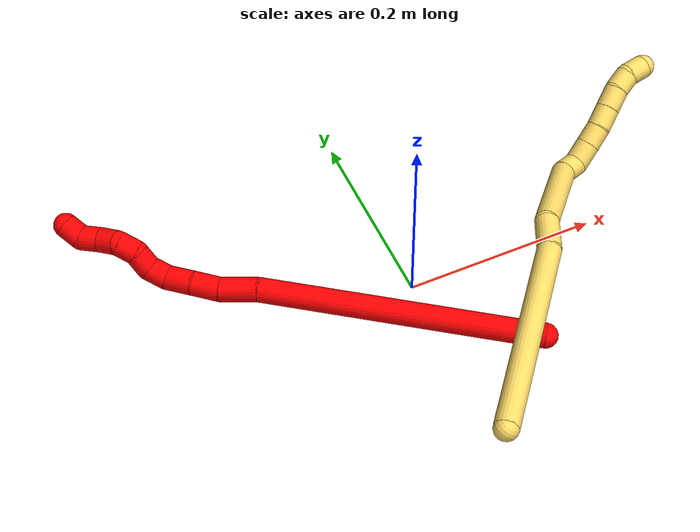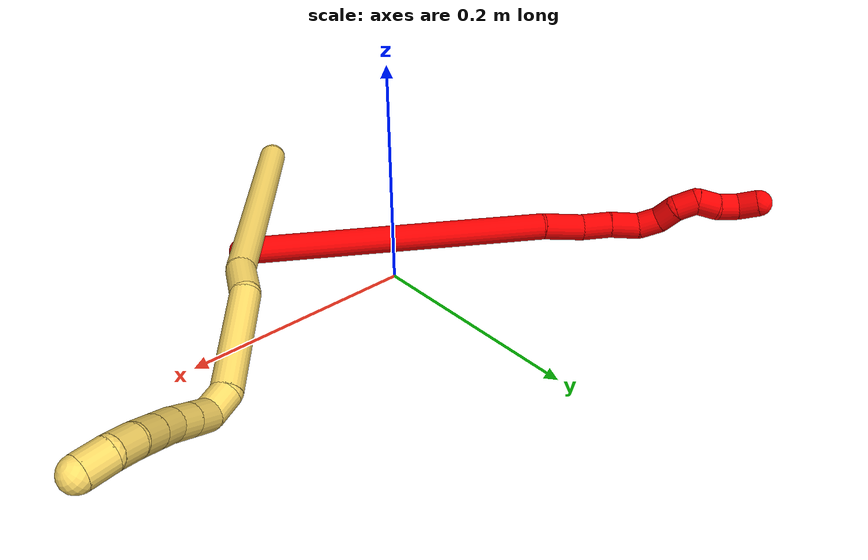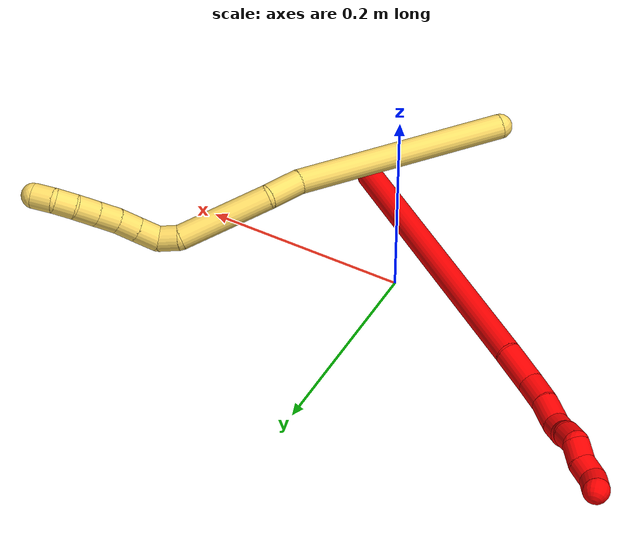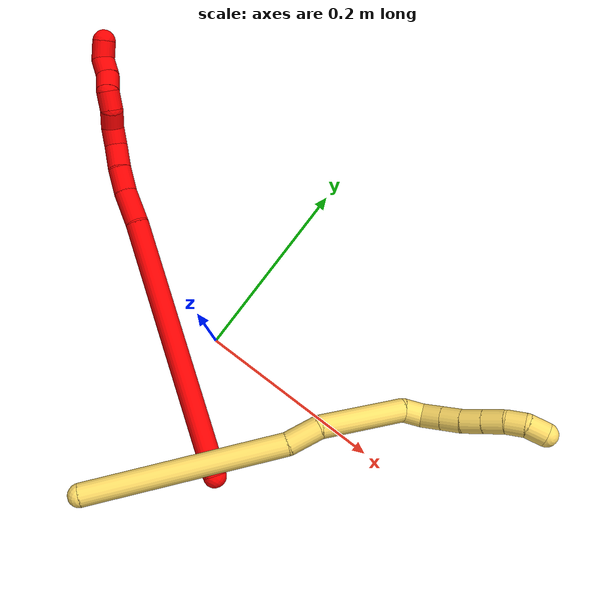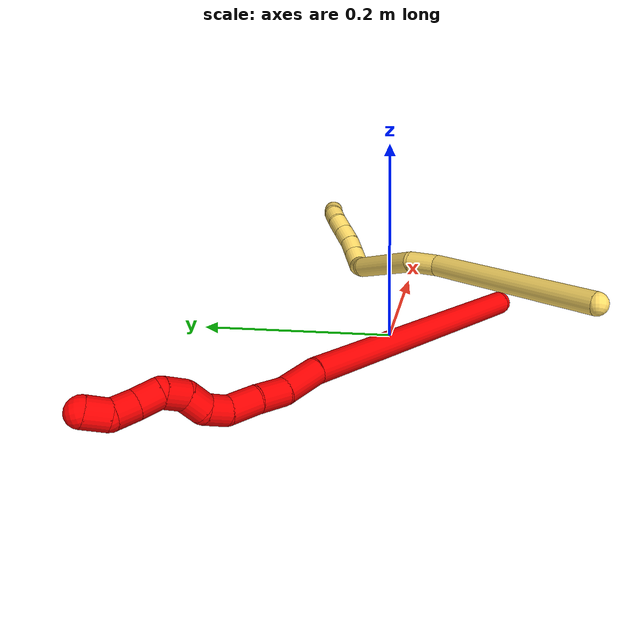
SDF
<sdf version="1.7">
 <world name="default">
  <model name="photoneo_s_sensor">
   <static>1</static>
   <pose>0 0 2 1.57079 1.57079 3.14159</pose>
   <link name="link">
    <inertial><mass>0.1</mass></inertial>
    <sensor name="sensor" type="depth">
     <update_rate>30</update_rate>
     <camera>
      <horizontal_fov>1.22</horizontal_fov>
      <image><width>1920</width><height>1200</height><format>B8G8R8</format></image>
      <clip><near>0.1</near><far>4</far></clip>
      <depth_camera><output>points</output></depth_camera>
     </camera>
     <plugin name="camera_plugin" filename="libgazebo_ros_depth_camera.so">
      <baseline>0.2</baseline>
      <alwaysOn>1</alwaysOn>
      <updateRate>0.0</updateRate>
      <cameraName>camera_ir</cameraName>
      <imageTopicName>/camera/color/image_raw</imageTopicName>
      <cameraInfoTopicName>/camera/color/camera_info</cameraInfoTopicName>
      <depthImageTopicName>/camera/depth/image_raw</depthImageTopicName>
      <depthImageCameraInfoTopicName>/camera/depth/camera_info</depthImageCameraInfoTopicName>
      <pointCloudTopicName>/camera/depth/points</pointCloudTopicName>
      <frameName>fr_optical</frameName>
      <pointCloudCutoff>0.1</pointCloudCutoff>
      <pointCloudCutoffMax>2.0</pointCloudCutoffMax>
      <distortionK1>0</distortionK1>
      <distortionK2>0</distortionK2>
      <distortionK3>0</distortionK3>
      <distortionT1>0</distortionT1>
      <distortionT2>0</distortionT2>
      <CxPrime>0</CxPrime>
      <Cx>0</Cx>
      <Cy>0</Cy>
      <focalLength>0</focalLength>
      <hackBaseline>0</hackBaseline>
     </plugin>
    </sensor>
   </link>
  </model>
  <model name="bin">
   <static>1</static>
   <link name="bottom">
    <collision name="collision-bottom">
     <pose>0 0 -0.01 0 -0 0</pose>
     <geometry><box><size>0.8 0.6 0.02</size></box></geometry>
     <surface>
      <friction><ode><mu>100</mu><mu2>100</mu2></ode></friction>
      <contact><collide_bitmask>65535</collide_bitmask></contact>
     </surface>
    </collision>
   </link>
   <link name="west_wall">
    <collision name="collision-west_wall">
     <pose>-0.41 0 0.1 0 -0 0</pose>
     <geometry><box><size>0.02 0.6 0.2</size></box></geometry>
     <surface>
      <friction><ode><mu>100</mu><mu2>100</mu2></ode></friction>
      <contact><collide_bitmask>65535</collide_bitmask></contact>
     </surface>
    </collision>
   </link>
   <link name="east_wall">
    <collision name="collision-east_wall">
     <pose>0.41 0 0.1 0 -0 0</pose>
     <geometry><box><size>0.02 0.6 0.2</size></box></geometry>
     <surface>
      <friction><ode><mu>100</mu><mu2>100</mu2></ode></friction>
      <contact><collide_bitmask>65535</collide_bitmask></contact>
     </surface>
    </collision>
   </link>
   <link name="south_wall">
    <collision name="collision-south_wall">
     <pose>0 -0.31 0.1 0 -0 0</pose>
     <geometry><box><size>0.8 0.02 0.2</size></box></geometry>
     <surface>
      <friction><ode><mu>100</mu><mu2>100</mu2></ode></friction>
      <contact><collide_bitmask>65535</collide_bitmask></contact>
     </surface>
    </collision>
   </link>
   <link name="north_wall">
    <collision name="collision-north_wall">
     <pose>0 0.31 0.1 0 -0 0</pose>
     <geometry><box><size>0.8 0.02 0.2</size></box></geometry>
     <surface>
      <friction><ode><mu>100</mu><mu2>100</mu2></ode></friction>
      <contact><collide_bitmask>65535</collide_bitmask></contact>
     </surface>
    </collision>
   </link>
  </model>
  <model name="2">
   <static>0</static>
   <link name="2">
    <collision name="collision-cylinder-e_1_1_4">
     <pose>-0.052506 0.084655 0.100923 -0.697958 -0.379301 0.139469</pose>
     <geometry><cylinder><radius>0.0125</radius><length>0.283611</length></cylinder></geometry>
     <surface>
      <friction><ode><mu>1.16</mu><mu2>1.16</mu2><slip1>0</slip1><slip2>0</slip2></ode></friction>
      <contact><ode><kp>1e+06</kp><kd>1</kd><max_vel>0</max_vel><min_depth>0.001</min_depth></ode></contact>
     </surface>
    </collision>
    <visual name="visual-cylinder-e_1_1_4">
     <pose>-0.052506 0.084655 0.100923 -0.697958 -0.379301 0.139469</pose>
     <geometry><cylinder><radius>0.0125</radius><length>0.283611</length></cylinder></geometry>
     <material><ambient>1 0 0 1</ambient></material>
    </visual>
    <collision name="collision-cylinder-e_2_4_5">
     <pose>-0.10929 0.182686 0.215459 -0.776657 -0.22044 0.090488</pose>
     <geometry><cylinder><radius>0.0125</radius><length>0.039117</length></cylinder></geometry>
     <surface>
      <friction><ode><mu>1.16</mu><mu2>1.16</mu2><slip1>0</slip1><slip2>0</slip2></ode></friction>
      <contact><ode><kp>1e+06</kp><kd>1</kd><max_vel>0</max_vel><min_depth>0.001</min_depth></ode></contact>
     </surface>
    </collision>
    <visual name="visual-cylinder-e_2_4_5">
     <pose>-0.10929 0.182686 0.215459 -0.776657 -0.22044 0.090488</pose>
     <geometry><cylinder><radius>0.0125</radius><length>0.039117</length></cylinder></geometry>
     <material><ambient>1 0 0 1</ambient></material>
    </visual>
    <collision name="collision-cylinder-e_3_5_6">
     <pose>-0.119309 0.203674 0.239362 -0.63682 -0.421775 0.140893</pose>
     <geometry><cylinder><radius>0.0125</radius><length>0.028057</length></cylinder></geometry>
     <surface>
      <friction><ode><mu>1.16</mu><mu2>1.16</mu2><slip1>0</slip1><slip2>0</slip2></ode></friction>
      <contact><ode><kp>1e+06</kp><kd>1</kd><max_vel>0</max_vel><min_depth>0.001</min_depth></ode></contact>
     </surface>
    </collision>
    <visual name="visual-cylinder-e_3_5_6">
     <pose>-0.119309 0.203674 0.239362 -0.63682 -0.421775 0.140893</pose>
     <geometry><cylinder><radius>0.0125</radius><length>0.028057</length></cylinder></geometry>
     <material><ambient>1 0 0 1</ambient></material>
    </visual>
    <collision name="collision-cylinder-e_4_6_7">
     <pose>-0.129032 0.218369 0.260696 -0.570383 -0.294505 0.086919</pose>
     <geometry><cylinder><radius>0.0125</radius><length>0.027421</length></cylinder></geometry>
     <surface>
      <friction><ode><mu>1.16</mu><mu2>1.16</mu2><slip1>0</slip1><slip2>0</slip2></ode></friction>
      <contact><ode><kp>1e+06</kp><kd>1</kd><max_vel>0</max_vel><min_depth>0.001</min_depth></ode></contact>
     </surface>
    </collision>
    <visual name="visual-cylinder-e_4_6_7">
     <pose>-0.129032 0.218369 0.260696 -0.570383 -0.294505 0.086919</pose>
     <geometry><cylinder><radius>0.0125</radius><length>0.027421</length></cylinder></geometry>
     <material><ambient>1 0 0 1</ambient></material>
    </visual>
    <collision name="collision-cylinder-e_5_7_8">
     <pose>-0.139715 0.229131 0.278696 -0.486231 -0.705527 0.18212</pose>
     <geometry><cylinder><radius>0.0125</radius><length>0.020673</length></cylinder></geometry>
     <surface>
      <friction><ode><mu>1.16</mu><mu2>1.16</mu2><slip1>0</slip1><slip2>0</slip2></ode></friction>
      <contact><ode><kp>1e+06</kp><kd>1</kd><max_vel>0</max_vel><min_depth>0.001</min_depth></ode></contact>
     </surface>
    </collision>
    <visual name="visual-cylinder-e_5_7_8">
     <pose>-0.139715 0.229131 0.278696 -0.486231 -0.705527 0.18212</pose>
     <geometry><cylinder><radius>0.0125</radius><length>0.020673</length></cylinder></geometry>
     <material><ambient>1 0 0 1</ambient></material>
    </visual>
    <collision name="collision-cylinder-e_6_8_9">
     <pose>-0.155284 0.232697 0.290351 0.023553 -1.08344 -0.014174</pose>
     <geometry><cylinder><radius>0.0125</radius><length>0.02007</length></cylinder></geometry>
     <surface>
      <friction><ode><mu>1.16</mu><mu2>1.16</mu2><slip1>0</slip1><slip2>0</slip2></ode></friction>
      <contact><ode><kp>1e+06</kp><kd>1</kd><max_vel>0</max_vel><min_depth>0.001</min_depth></ode></contact>
     </surface>
    </collision>
    <visual name="visual-cylinder-e_6_8_9">
     <pose>-0.155284 0.232697 0.290351 0.023553 -1.08344 -0.014174</pose>
     <geometry><cylinder><radius>0.0125</radius><length>0.02007</length></cylinder></geometry>
     <material><ambient>1 0 0 1</ambient></material>
    </visual>
    <collision name="collision-cylinder-e_7_9_10">
     <pose>-0.171144 0.236239 0.301741 -0.499612 -0.742263 0.197931</pose>
     <geometry><cylinder><radius>0.0125</radius><length>0.02069</length></cylinder></geometry>
     <surface>
      <friction><ode><mu>1.16</mu><mu2>1.16</mu2><slip1>0</slip1><slip2>0</slip2></ode></friction>
      <contact><ode><kp>1e+06</kp><kd>1</kd><max_vel>0</max_vel><min_depth>0.001</min_depth></ode></contact>
     </surface>
    </collision>
    <visual name="visual-cylinder-e_7_9_10">
     <pose>-0.171144 0.236239 0.301741 -0.499612 -0.742263 0.197931</pose>
     <geometry><cylinder><radius>0.0125</radius><length>0.02069</length></cylinder></geometry>
     <material><ambient>1 0 0 1</ambient></material>
    </visual>
    <collision name="collision-cylinder-e_8_10_11">
     <pose>-0.179069 0.244579 0.317382 -0.482518 -0.092089 0.022674</pose>
     <geometry><cylinder><radius>0.0125</radius><length>0.02029</length></cylinder></geometry>
     <surface>
      <friction><ode><mu>1.16</mu><mu2>1.16</mu2><slip1>0</slip1><slip2>0</slip2></ode></friction>
      <contact><ode><kp>1e+06</kp><kd>1</kd><max_vel>0</max_vel><min_depth>0.001</min_depth></ode></contact>
     </surface>
    </collision>
    <visual name="visual-cylinder-e_8_10_11">
     <pose>-0.179069 0.244579 0.317382 -0.482518 -0.092089 0.022674</pose>
     <geometry><cylinder><radius>0.0125</radius><length>0.02029</length></cylinder></geometry>
     <material><ambient>1 0 0 1</ambient></material>
    </visual>
    <collision name="collision-cylinder-e_9_11_12">
     <pose>-0.182935 0.255415 0.333664 -0.697688 -0.297322 0.108838</pose>
     <geometry><cylinder><radius>0.0125</radius><length>0.020018</length></cylinder></geometry>
     <surface>
      <friction><ode><mu>1.16</mu><mu2>1.16</mu2><slip1>0</slip1><slip2>0</slip2></ode></friction>
      <contact><ode><kp>1e+06</kp><kd>1</kd><max_vel>0</max_vel><min_depth>0.001</min_depth></ode></contact>
     </surface>
    </collision>
    <visual name="visual-cylinder-e_9_11_12">
     <pose>-0.182935 0.255415 0.333664 -0.697688 -0.297322 0.108838</pose>
     <geometry><cylinder><radius>0.0125</radius><length>0.020018</length></cylinder></geometry>
     <material><ambient>1 0 0 1</ambient></material>
    </visual>
    <collision name="collision-cylinder-e_10_12_2">
     <pose>-0.191838 0.263133 0.348897 -0.196208 -0.637966 0.064986</pose>
     <geometry><cylinder><radius>0.0125</radius><length>0.020051</length></cylinder></geometry>
     <surface>
      <friction><ode><mu>1.16</mu><mu2>1.16</mu2><slip1>0</slip1><slip2>0</slip2></ode></friction>
      <contact><ode><kp>1e+06</kp><kd>1</kd><max_vel>0</max_vel><min_depth>0.001</min_depth></ode></contact>
     </surface>
    </collision>
    <visual name="visual-cylinder-e_10_12_2">
     <pose>-0.191838 0.263133 0.348897 -0.196208 -0.637966 0.064986</pose>
     <geometry><cylinder><radius>0.0125</radius><length>0.020051</length></cylinder></geometry>
     <material><ambient>1 0 0 1</ambient></material>
    </visual>
    <collision name="collision-sphere-2">
     <pose>-0.197809 0.264703 0.356796 0 -0 0</pose>
     <geometry><sphere><radius>0.0125</radius></sphere></geometry>
     <surface>
      <friction><ode><mu>1.16</mu><mu2>1.16</mu2><slip1>0</slip1><slip2>0</slip2></ode></friction>
      <contact><ode><kp>1e+06</kp><kd>1</kd><max_vel>0</max_vel><min_depth>0.001</min_depth></ode></contact>
     </surface>
    </collision>
    <visual name="visual-sphere-2">
     <pose>-0.197809 0.264703 0.356796 0 -0 0</pose>
     <geometry><sphere><radius>0.0125</radius></sphere></geometry>
     <material><ambient>1 0 0 1</ambient></material>
    </visual>
    <collision name="collision-sphere-12">
     <pose>-0.185867 0.261563 0.340998 0 -0 0</pose>
     <geometry><sphere><radius>0.0125</radius></sphere></geometry>
     <surface>
      <friction><ode><mu>1.16</mu><mu2>1.16</mu2><slip1>0</slip1><slip2>0</slip2></ode></friction>
      <contact><ode><kp>1e+06</kp><kd>1</kd><max_vel>0</max_vel><min_depth>0.001</min_depth></ode></contact>
     </surface>
    </collision>
    <visual name="visual-sphere-12">
     <pose>-0.185867 0.261563 0.340998 0 -0 0</pose>
     <geometry><sphere><radius>0.0125</radius></sphere></geometry>
     <material><ambient>1 0 0 1</ambient></material>
    </visual>
    <collision name="collision-sphere-11">
     <pose>-0.180002 0.249267 0.32633 0 -0 0</pose>
     <geometry><sphere><radius>0.0125</radius></sphere></geometry>
     <surface>
      <friction><ode><mu>1.16</mu><mu2>1.16</mu2><slip1>0</slip1><slip2>0</slip2></ode></friction>
      <contact><ode><kp>1e+06</kp><kd>1</kd><max_vel>0</max_vel><min_depth>0.001</min_depth></ode></contact>
     </surface>
    </collision>
    <visual name="visual-sphere-11">
     <pose>-0.180002 0.249267 0.32633 0 -0 0</pose>
     <geometry><sphere><radius>0.0125</radius></sphere></geometry>
     <material><ambient>1 0 0 1</ambient></material>
    </visual>
    <collision name="collision-sphere-10">
     <pose>-0.178136 0.239892 0.308433 0 -0 0</pose>
     <geometry><sphere><radius>0.0125</radius></sphere></geometry>
     <surface>
      <friction><ode><mu>1.16</mu><mu2>1.16</mu2><slip1>0</slip1><slip2>0</slip2></ode></friction>
      <contact><ode><kp>1e+06</kp><kd>1</kd><max_vel>0</max_vel><min_depth>0.001</min_depth></ode></contact>
     </surface>
    </collision>
    <visual name="visual-sphere-10">
     <pose>-0.178136 0.239892 0.308433 0 -0 0</pose>
     <geometry><sphere><radius>0.0125</radius></sphere></geometry>
     <material><ambient>1 0 0 1</ambient></material>
    </visual>
    <collision name="collision-sphere-9">
     <pose>-0.164151 0.232587 0.295049 0 -0 0</pose>
     <geometry><sphere><radius>0.0125</radius></sphere></geometry>
     <surface>
      <friction><ode><mu>1.16</mu><mu2>1.16</mu2><slip1>0</slip1><slip2>0</slip2></ode></friction>
      <contact><ode><kp>1e+06</kp><kd>1</kd><max_vel>0</max_vel><min_depth>0.001</min_depth></ode></contact>
     </surface>
    </collision>
    <visual name="visual-sphere-9">
     <pose>-0.164151 0.232587 0.295049 0 -0 0</pose>
     <geometry><sphere><radius>0.0125</radius></sphere></geometry>
     <material><ambient>1 0 0 1</ambient></material>
    </visual>
    <collision name="collision-sphere-4">
     <pose>-0.105013 0.169309 0.201846 0 -0 0</pose>
     <geometry><sphere><radius>0.0125</radius></sphere></geometry>
     <surface>
      <friction><ode><mu>1.16</mu><mu2>1.16</mu2><slip1>0</slip1><slip2>0</slip2></ode></friction>
      <contact><ode><kp>1e+06</kp><kd>1</kd><max_vel>0</max_vel><min_depth>0.001</min_depth></ode></contact>
     </surface>
    </collision>
    <visual name="visual-sphere-4">
     <pose>-0.105013 0.169309 0.201846 0 -0 0</pose>
     <geometry><sphere><radius>0.0125</radius></sphere></geometry>
     <material><ambient>1 0 0 1</ambient></material>
    </visual>
    <collision name="collision-sphere-1">
     <geometry><sphere><radius>0.0125</radius></sphere></geometry>
     <surface>
      <friction><ode><mu>1.16</mu><mu2>1.16</mu2><slip1>0</slip1><slip2>0</slip2></ode></friction>
      <contact><ode><kp>1e+06</kp><kd>1</kd><max_vel>0</max_vel><min_depth>0.001</min_depth></ode></contact>
     </surface>
    </collision>
    <visual name="visual-sphere-1">
     <geometry><sphere><radius>0.0125</radius></sphere></geometry>
     <material><ambient>1 0 0 1</ambient></material>
    </visual>
    <collision name="collision-sphere-8">
     <pose>-0.146417 0.232808 0.285653 0 -0 0</pose>
     <geometry><sphere><radius>0.0125</radius></sphere></geometry>
     <surface>
      <friction><ode><mu>1.16</mu><mu2>1.16</mu2><slip1>0</slip1><slip2>0</slip2></ode></friction>
      <contact><ode><kp>1e+06</kp><kd>1</kd><max_vel>0</max_vel><min_depth>0.001</min_depth></ode></contact>
     </surface>
    </collision>
    <visual name="visual-sphere-8">
     <pose>-0.146417 0.232808 0.285653 0 -0 0</pose>
     <geometry><sphere><radius>0.0125</radius></sphere></geometry>
     <material><ambient>1 0 0 1</ambient></material>
    </visual>
    <collision name="collision-sphere-5">
     <pose>-0.113566 0.196063 0.229072 0 -0 0</pose>
     <geometry><sphere><radius>0.0125</radius></sphere></geometry>
     <surface>
      <friction><ode><mu>1.16</mu><mu2>1.16</mu2><slip1>0</slip1><slip2>0</slip2></ode></friction>
      <contact><ode><kp>1e+06</kp><kd>1</kd><max_vel>0</max_vel><min_depth>0.001</min_depth></ode></contact>
     </surface>
    </collision>
    <visual name="visual-sphere-5">
     <pose>-0.113566 0.196063 0.229072 0 -0 0</pose>
     <geometry><sphere><radius>0.0125</radius></sphere></geometry>
     <material><ambient>1 0 0 1</ambient></material>
    </visual>
    <collision name="collision-sphere-6">
     <pose>-0.125052 0.211285 0.249653 0 -0 0</pose>
     <geometry><sphere><radius>0.0125</radius></sphere></geometry>
     <surface>
      <friction><ode><mu>1.16</mu><mu2>1.16</mu2><slip1>0</slip1><slip2>0</slip2></ode></friction>
      <contact><ode><kp>1e+06</kp><kd>1</kd><max_vel>0</max_vel><min_depth>0.001</min_depth></ode></contact>
     </surface>
    </collision>
    <visual name="visual-sphere-6">
     <pose>-0.125052 0.211285 0.249653 0 -0 0</pose>
     <geometry><sphere><radius>0.0125</radius></sphere></geometry>
     <material><ambient>1 0 0 1</ambient></material>
    </visual>
    <collision name="collision-sphere-7">
     <pose>-0.133012 0.225454 0.271739 0 -0 0</pose>
     <geometry><sphere><radius>0.0125</radius></sphere></geometry>
     <surface>
      <friction><ode><mu>1.16</mu><mu2>1.16</mu2><slip1>0</slip1><slip2>0</slip2></ode></friction>
      <contact><ode><kp>1e+06</kp><kd>1</kd><max_vel>0</max_vel><min_depth>0.001</min_depth></ode></contact>
     </surface>
    </collision>
    <visual name="visual-sphere-7">
     <pose>-0.133012 0.225454 0.271739 0 -0 0</pose>
     <geometry><sphere><radius>0.0125</radius></sphere></geometry>
     <material><ambient>1 0 0 1</ambient></material>
    </visual>
    <inertial>
     <pose>-0.09348 0.145009 0.177725 0 -0 0</pose>
     <mass>0.5</mass>
     <inertia>
      <ixx>0.002011</ixx>
      <ixy>0</ixy>
      <ixz>0</ixz>
      <iyy>0.001801</iyy>
      <iyz>0</iyz>
      <izz>-0.000408</izz>
     </inertia>
    </inertial>
   </link>
   <pose>0.088509 -0.113567 0.011498 -2.31704 1.21077 -0.490082</pose>
  </model>
  <model name="5">
   <static>0</static>
   <link name="5">
    <collision name="collision-cylinder-e_1_1_4">
     <pose>0.063647 0.078232 0.037896 -1.1197 0.632001 -0.404239</pose>
     <geometry><cylinder><radius>0.0125</radius><length>0.215475</length></cylinder></geometry>
     <surface>
      <friction><ode><mu>1.16</mu><mu2>1.16</mu2><slip1>0</slip1><slip2>0</slip2></ode></friction>
      <contact><ode><kp>1e+06</kp><kd>1</kd><max_vel>0</max_vel><min_depth>0.001</min_depth></ode></contact>
     </surface>
    </collision>
    <visual name="visual-cylinder-e_1_1_4">
     <pose>0.063647 0.078232 0.037896 -1.1197 0.632001 -0.404239</pose>
     <geometry><cylinder><radius>0.0125</radius><length>0.215475</length></cylinder></geometry>
     <material><ambient>1 0.858824 0.4 1</ambient></material>
    </visual>
    <collision name="collision-cylinder-e_2_4_5">
     <pose>0.135268 0.172425 0.079904 -1.31865 0.450605 -0.351596</pose>
     <geometry><cylinder><radius>0.0125</radius><length>0.036619</length></cylinder></geometry>
     <surface>
      <friction><ode><mu>1.16</mu><mu2>1.16</mu2><slip1>0</slip1><slip2>0</slip2></ode></friction>
      <contact><ode><kp>1e+06</kp><kd>1</kd><max_vel>0</max_vel><min_depth>0.001</min_depth></ode></contact>
     </surface>
    </collision>
    <visual name="visual-cylinder-e_2_4_5">
     <pose>0.135268 0.172425 0.079904 -1.31865 0.450605 -0.351596</pose>
     <geometry><cylinder><radius>0.0125</radius><length>0.036619</length></cylinder></geometry>
     <material><ambient>1 0.858824 0.4 1</ambient></material>
    </visual>
    <collision name="collision-cylinder-e_3_5_6">
     <pose>0.177859 0.219498 0.090938 -1.35187 0.82664 -0.676427</pose>
     <geometry><cylinder><radius>0.0125</radius><length>0.09411</length></cylinder></geometry>
     <surface>
      <friction><ode><mu>1.16</mu><mu2>1.16</mu2><slip1>0</slip1><slip2>0</slip2></ode></friction>
      <contact><ode><kp>1e+06</kp><kd>1</kd><max_vel>0</max_vel><min_depth>0.001</min_depth></ode></contact>
     </surface>
    </collision>
    <visual name="visual-cylinder-e_3_5_6">
     <pose>0.177859 0.219498 0.090938 -1.35187 0.82664 -0.676427</pose>
     <geometry><cylinder><radius>0.0125</radius><length>0.09411</length></cylinder></geometry>
     <material><ambient>1 0.858824 0.4 1</ambient></material>
    </visual>
    <collision name="collision-cylinder-e_4_6_7">
     <pose>0.22195 0.253874 0.102104 -0.655571 1.05644 -0.39177</pose>
     <geometry><cylinder><radius>0.0125</radius><length>0.021765</length></cylinder></geometry>
     <surface>
      <friction><ode><mu>1.16</mu><mu2>1.16</mu2><slip1>0</slip1><slip2>0</slip2></ode></friction>
      <contact><ode><kp>1e+06</kp><kd>1</kd><max_vel>0</max_vel><min_depth>0.001</min_depth></ode></contact>
     </surface>
    </collision>
    <visual name="visual-cylinder-e_4_6_7">
     <pose>0.22195 0.253874 0.102104 -0.655571 1.05644 -0.39177</pose>
     <geometry><cylinder><radius>0.0125</radius><length>0.021765</length></cylinder></geometry>
     <material><ambient>1 0.858824 0.4 1</ambient></material>
    </visual>
    <collision name="collision-cylinder-e_5_7_8">
     <pose>0.235771 0.26153 0.11651 -0.407975 0.374212 -0.078288</pose>
     <geometry><cylinder><radius>0.0125</radius><length>0.023786</length></cylinder></geometry>
     <surface>
      <friction><ode><mu>1.16</mu><mu2>1.16</mu2><slip1>0</slip1><slip2>0</slip2></ode></friction>
      <contact><ode><kp>1e+06</kp><kd>1</kd><max_vel>0</max_vel><min_depth>0.001</min_depth></ode></contact>
     </surface>
    </collision>
    <visual name="visual-cylinder-e_5_7_8">
     <pose>0.235771 0.26153 0.11651 -0.407975 0.374212 -0.078288</pose>
     <geometry><cylinder><radius>0.0125</radius><length>0.023786</length></cylinder></geometry>
     <material><ambient>1 0.858824 0.4 1</ambient></material>
    </visual>
    <collision name="collision-cylinder-e_6_8_9">
     <pose>0.24394 0.269831 0.135792 -0.40488 0.367547 -0.076263</pose>
     <geometry><cylinder><radius>0.0125</radius><length>0.021267</length></cylinder></geometry>
     <surface>
      <friction><ode><mu>1.16</mu><mu2>1.16</mu2><slip1>0</slip1><slip2>0</slip2></ode></friction>
      <contact><ode><kp>1e+06</kp><kd>1</kd><max_vel>0</max_vel><min_depth>0.001</min_depth></ode></contact>
     </surface>
    </collision>
    <visual name="visual-cylinder-e_6_8_9">
     <pose>0.24394 0.269831 0.135792 -0.40488 0.367547 -0.076263</pose>
     <geometry><cylinder><radius>0.0125</radius><length>0.021267</length></cylinder></geometry>
     <material><ambient>1 0.858824 0.4 1</ambient></material>
    </visual>
    <collision name="collision-cylinder-e_7_9_10">
     <pose>0.251586 0.279203 0.154013 -0.540644 0.345939 -0.096754</pose>
     <geometry><cylinder><radius>0.0125</radius><length>0.022564</length></cylinder></geometry>
     <surface>
      <friction><ode><mu>1.16</mu><mu2>1.16</mu2><slip1>0</slip1><slip2>0</slip2></ode></friction>
      <contact><ode><kp>1e+06</kp><kd>1</kd><max_vel>0</max_vel><min_depth>0.001</min_depth></ode></contact>
     </surface>
    </collision>
    <visual name="visual-cylinder-e_7_9_10">
     <pose>0.251586 0.279203 0.154013 -0.540644 0.345939 -0.096754</pose>
     <geometry><cylinder><radius>0.0125</radius><length>0.022564</length></cylinder></geometry>
     <material><ambient>1 0.858824 0.4 1</ambient></material>
    </visual>
    <collision name="collision-cylinder-e_8_10_11">
     <pose>0.259286 0.290207 0.17233 -0.541312 0.345798 -0.096839</pose>
     <geometry><cylinder><radius>0.0125</radius><length>0.022863</length></cylinder></geometry>
     <surface>
      <friction><ode><mu>1.16</mu><mu2>1.16</mu2><slip1>0</slip1><slip2>0</slip2></ode></friction>
      <contact><ode><kp>1e+06</kp><kd>1</kd><max_vel>0</max_vel><min_depth>0.001</min_depth></ode></contact>
     </surface>
    </collision>
    <visual name="visual-cylinder-e_8_10_11">
     <pose>0.259286 0.290207 0.17233 -0.541312 0.345798 -0.096839</pose>
     <geometry><cylinder><radius>0.0125</radius><length>0.022863</length></cylinder></geometry>
     <material><ambient>1 0.858824 0.4 1</ambient></material>
    </visual>
    <collision name="collision-cylinder-e_9_11_12">
     <pose>0.268481 0.299614 0.189414 -0.456801 0.545496 -0.129862</pose>
     <geometry><cylinder><radius>0.0125</radius><length>0.020506</length></cylinder></geometry>
     <surface>
      <friction><ode><mu>1.16</mu><mu2>1.16</mu2><slip1>0</slip1><slip2>0</slip2></ode></friction>
      <contact><ode><kp>1e+06</kp><kd>1</kd><max_vel>0</max_vel><min_depth>0.001</min_depth></ode></contact>
     </surface>
    </collision>
    <visual name="visual-cylinder-e_9_11_12">
     <pose>0.268481 0.299614 0.189414 -0.456801 0.545496 -0.129862</pose>
     <geometry><cylinder><radius>0.0125</radius><length>0.020506</length></cylinder></geometry>
     <material><ambient>1 0.858824 0.4 1</ambient></material>
    </visual>
    <collision name="collision-cylinder-e_10_12_2">
     <pose>0.282116 0.304791 0.203593 -0.204658 0.911249 -0.100551</pose>
     <geometry><cylinder><radius>0.0125</radius><length>0.021045</length></cylinder></geometry>
     <surface>
      <friction><ode><mu>1.16</mu><mu2>1.16</mu2><slip1>0</slip1><slip2>0</slip2></ode></friction>
      <contact><ode><kp>1e+06</kp><kd>1</kd><max_vel>0</max_vel><min_depth>0.001</min_depth></ode></contact>
     </surface>
    </collision>
    <visual name="visual-cylinder-e_10_12_2">
     <pose>0.282116 0.304791 0.203593 -0.204658 0.911249 -0.100551</pose>
     <geometry><cylinder><radius>0.0125</radius><length>0.021045</length></cylinder></geometry>
     <material><ambient>1 0.858824 0.4 1</ambient></material>
    </visual>
    <collision name="collision-sphere-2">
     <pose>0.290431 0.306101 0.209906 0 -0 0</pose>
     <geometry><sphere><radius>0.0125</radius></sphere></geometry>
     <surface>
      <friction><ode><mu>1.16</mu><mu2>1.16</mu2><slip1>0</slip1><slip2>0</slip2></ode></friction>
      <contact><ode><kp>1e+06</kp><kd>1</kd><max_vel>0</max_vel><min_depth>0.001</min_depth></ode></contact>
     </surface>
    </collision>
    <visual name="visual-sphere-2">
     <pose>0.290431 0.306101 0.209906 0 -0 0</pose>
     <geometry><sphere><radius>0.0125</radius></sphere></geometry>
     <material><ambient>1 0.858824 0.4 1</ambient></material>
    </visual>
    <collision name="collision-sphere-12">
     <pose>0.2738 0.30348 0.19728 0 -0 0</pose>
     <geometry><sphere><radius>0.0125</radius></sphere></geometry>
     <surface>
      <friction><ode><mu>1.16</mu><mu2>1.16</mu2><slip1>0</slip1><slip2>0</slip2></ode></friction>
      <contact><ode><kp>1e+06</kp><kd>1</kd><max_vel>0</max_vel><min_depth>0.001</min_depth></ode></contact>
     </surface>
    </collision>
    <visual name="visual-sphere-12">
     <pose>0.2738 0.30348 0.19728 0 -0 0</pose>
     <geometry><sphere><radius>0.0125</radius></sphere></geometry>
     <material><ambient>1 0.858824 0.4 1</ambient></material>
    </visual>
    <collision name="collision-sphere-11">
     <pose>0.263161 0.295748 0.181547 0 -0 0</pose>
     <geometry><sphere><radius>0.0125</radius></sphere></geometry>
     <surface>
      <friction><ode><mu>1.16</mu><mu2>1.16</mu2><slip1>0</slip1><slip2>0</slip2></ode></friction>
      <contact><ode><kp>1e+06</kp><kd>1</kd><max_vel>0</max_vel><min_depth>0.001</min_depth></ode></contact>
     </surface>
    </collision>
    <visual name="visual-sphere-11">
     <pose>0.263161 0.295748 0.181547 0 -0 0</pose>
     <geometry><sphere><radius>0.0125</radius></sphere></geometry>
     <material><ambient>1 0.858824 0.4 1</ambient></material>
    </visual>
    <collision name="collision-sphere-10">
     <pose>0.255412 0.284665 0.163113 0 -0 0</pose>
     <geometry><sphere><radius>0.0125</radius></sphere></geometry>
     <surface>
      <friction><ode><mu>1.16</mu><mu2>1.16</mu2><slip1>0</slip1><slip2>0</slip2></ode></friction>
      <contact><ode><kp>1e+06</kp><kd>1</kd><max_vel>0</max_vel><min_depth>0.001</min_depth></ode></contact>
     </surface>
    </collision>
    <visual name="visual-sphere-10">
     <pose>0.255412 0.284665 0.163113 0 -0 0</pose>
     <geometry><sphere><radius>0.0125</radius></sphere></geometry>
     <material><ambient>1 0.858824 0.4 1</ambient></material>
    </visual>
    <collision name="collision-sphere-9">
     <pose>0.247761 0.27374 0.144914 0 -0 0</pose>
     <geometry><sphere><radius>0.0125</radius></sphere></geometry>
     <surface>
      <friction><ode><mu>1.16</mu><mu2>1.16</mu2><slip1>0</slip1><slip2>0</slip2></ode></friction>
      <contact><ode><kp>1e+06</kp><kd>1</kd><max_vel>0</max_vel><min_depth>0.001</min_depth></ode></contact>
     </surface>
    </collision>
    <visual name="visual-sphere-9">
     <pose>0.247761 0.27374 0.144914 0 -0 0</pose>
     <geometry><sphere><radius>0.0125</radius></sphere></geometry>
     <material><ambient>1 0.858824 0.4 1</ambient></material>
    </visual>
    <collision name="collision-sphere-4">
     <pose>0.127294 0.156465 0.075792 0 -0 0</pose>
     <geometry><sphere><radius>0.0125</radius></sphere></geometry>
     <surface>
      <friction><ode><mu>1.16</mu><mu2>1.16</mu2><slip1>0</slip1><slip2>0</slip2></ode></friction>
      <contact><ode><kp>1e+06</kp><kd>1</kd><max_vel>0</max_vel><min_depth>0.001</min_depth></ode></contact>
     </surface>
    </collision>
    <visual name="visual-sphere-4">
     <pose>0.127294 0.156465 0.075792 0 -0 0</pose>
     <geometry><sphere><radius>0.0125</radius></sphere></geometry>
     <material><ambient>1 0.858824 0.4 1</ambient></material>
    </visual>
    <collision name="collision-sphere-1">
     <geometry><sphere><radius>0.0125</radius></sphere></geometry>
     <surface>
      <friction><ode><mu>1.16</mu><mu2>1.16</mu2><slip1>0</slip1><slip2>0</slip2></ode></friction>
      <contact><ode><kp>1e+06</kp><kd>1</kd><max_vel>0</max_vel><min_depth>0.001</min_depth></ode></contact>
     </surface>
    </collision>
    <visual name="visual-sphere-1">
     <geometry><sphere><radius>0.0125</radius></sphere></geometry>
     <material><ambient>1 0.858824 0.4 1</ambient></material>
    </visual>
    <collision name="collision-sphere-8">
     <pose>0.240119 0.265922 0.126671 0 -0 0</pose>
     <geometry><sphere><radius>0.0125</radius></sphere></geometry>
     <surface>
      <friction><ode><mu>1.16</mu><mu2>1.16</mu2><slip1>0</slip1><slip2>0</slip2></ode></friction>
      <contact><ode><kp>1e+06</kp><kd>1</kd><max_vel>0</max_vel><min_depth>0.001</min_depth></ode></contact>
     </surface>
    </collision>
    <visual name="visual-sphere-8">
     <pose>0.240119 0.265922 0.126671 0 -0 0</pose>
     <geometry><sphere><radius>0.0125</radius></sphere></geometry>
     <material><ambient>1 0.858824 0.4 1</ambient></material>
    </visual>
    <collision name="collision-sphere-5">
     <pose>0.143242 0.188386 0.084016 0 -0 0</pose>
     <geometry><sphere><radius>0.0125</radius></sphere></geometry>
     <surface>
      <friction><ode><mu>1.16</mu><mu2>1.16</mu2><slip1>0</slip1><slip2>0</slip2></ode></friction>
      <contact><ode><kp>1e+06</kp><kd>1</kd><max_vel>0</max_vel><min_depth>0.001</min_depth></ode></contact>
     </surface>
    </collision>
    <visual name="visual-sphere-5">
     <pose>0.143242 0.188386 0.084016 0 -0 0</pose>
     <geometry><sphere><radius>0.0125</radius></sphere></geometry>
     <material><ambient>1 0.858824 0.4 1</ambient></material>
    </visual>
    <collision name="collision-sphere-6">
     <pose>0.212475 0.25061 0.09786 0 -0 0</pose>
     <geometry><sphere><radius>0.0125</radius></sphere></geometry>
     <surface>
      <friction><ode><mu>1.16</mu><mu2>1.16</mu2><slip1>0</slip1><slip2>0</slip2></ode></friction>
      <contact><ode><kp>1e+06</kp><kd>1</kd><max_vel>0</max_vel><min_depth>0.001</min_depth></ode></contact>
     </surface>
    </collision>
    <visual name="visual-sphere-6">
     <pose>0.212475 0.25061 0.09786 0 -0 0</pose>
     <geometry><sphere><radius>0.0125</radius></sphere></geometry>
     <material><ambient>1 0.858824 0.4 1</ambient></material>
    </visual>
    <collision name="collision-sphere-7">
     <pose>0.231424 0.257138 0.106348 0 -0 0</pose>
     <geometry><sphere><radius>0.0125</radius></sphere></geometry>
     <surface>
      <friction><ode><mu>1.16</mu><mu2>1.16</mu2><slip1>0</slip1><slip2>0</slip2></ode></friction>
      <contact><ode><kp>1e+06</kp><kd>1</kd><max_vel>0</max_vel><min_depth>0.001</min_depth></ode></contact>
     </surface>
    </collision>
    <visual name="visual-sphere-7">
     <pose>0.231424 0.257138 0.106348 0 -0 0</pose>
     <geometry><sphere><radius>0.0125</radius></sphere></geometry>
     <material><ambient>1 0.858824 0.4 1</ambient></material>
    </visual>
    <inertial>
     <pose>0.14816 0.173612 0.08623 0 -0 0</pose>
     <mass>0.5</mass>
     <inertia>
      <ixx>0.000399</ixx>
      <ixy>0</ixy>
      <ixz>0</ixz>
      <iyy>0.000295</iyy>
      <iyz>0</iyz>
      <izz>-0.001213</izz>
     </inertia>
    </inertial>
   </link>
   <pose>-0.006761 -0.208274 0.04554 0.074906 0.625949 0.114906</pose>
  </model>
 </world>
</sdf>
